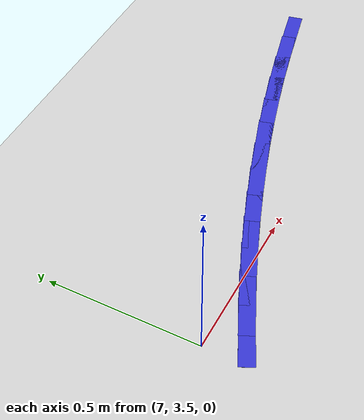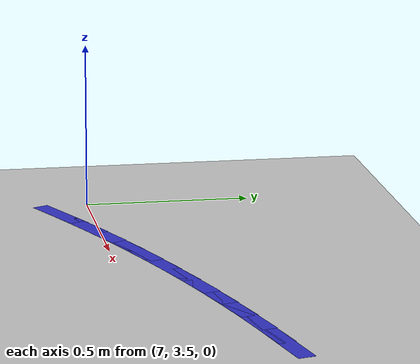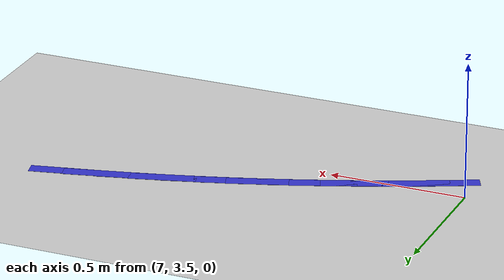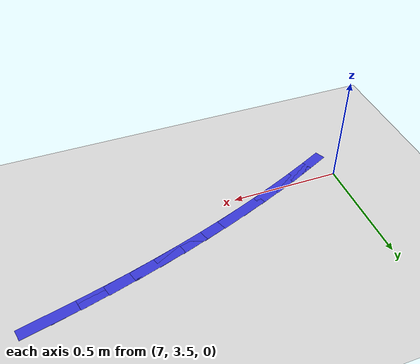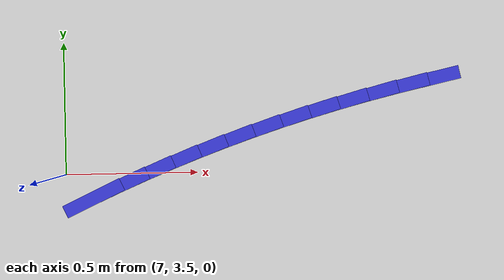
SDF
<sdf version="1.10">
 <world name="empty">
  <model name="ground_plane">
   <static>true</static>
   <link name="link">
    <collision name="collision">
     <geometry><plane><normal>0 0 1</normal><size>100 100</size></plane></geometry>
    </collision>
    <visual name="visual">
     <geometry><plane><normal>0 0 1</normal><size>100 100</size></plane></geometry>
     <material>
      <ambient>0.800000012 0.800000012 0.800000012 1</ambient>
      <diffuse>0.800000012 0.800000012 0.800000012 1</diffuse>
      <specular>0.800000012 0.800000012 0.800000012 1</specular>
     </material>
    </visual>
    <inertial>
     <mass>1</mass>
     <inertia><ixx>1</ixx><ixy>0</ixy><ixz>0</ixz><iyy>1</iyy><iyz>0</iyz><izz>1</izz></inertia>
    </inertial>
   </link>
  </model>
  <model name="unit_box_75">
   <link name="box_link">
    <collision name="box_collision">
     <geometry><box><size>0.000005 0.000005 0.000005</size></box></geometry>
    </collision>
    <visual name="box_visual">
     <geometry><box><size>0.24 0.05 0.0005</size></box></geometry>
     <material>
      <ambient>0.300000012 0.300000012 0.300000012 1</ambient>
      <diffuse>0.2 0.2 0.8 1</diffuse>
      <specular>1 1 1 1</specular>
     </material>
    </visual>
    <pose>7.102707515930657 3.408743078164566 0 0 0 0.44327587215471437</pose>
   </link>
   <static>false</static>
  </model>
  <model name="unit_box_76">
   <link name="box_link">
    <collision name="box_collision">
     <geometry><box><size>0.000005 0.000005 0.000005</size></box></geometry>
    </collision>
    <visual name="box_visual">
     <geometry><box><size>0.24 0.05 0.0005</size></box></geometry>
     <material>
      <ambient>0.300000012 0.300000012 0.300000012 1</ambient>
      <diffuse>0.2 0.2 0.8 1</diffuse>
      <specular>1 1 1 1</specular>
     </material>
    </visual>
    <pose>7.199368442098775 3.4526264584421913 0 0 0 0.4261695110121675</pose>
   </link>
   <static>false</static>
  </model>
  <model name="unit_box_77">
   <link name="box_link">
    <collision name="box_collision">
     <geometry><box><size>0.000005 0.000005 0.000005</size></box></geometry>
    </collision>
    <visual name="box_visual">
     <geometry><box><size>0.24 0.05 0.0005</size></box></geometry>
     <material>
      <ambient>0.300000012 0.300000012 0.300000012 1</ambient>
      <diffuse>0.2 0.2 0.8 1</diffuse>
      <specular>1 1 1 1</specular>
     </material>
    </visual>
    <pose>7.297668038408779 3.49519890260631 0 0 0 0.4087018499119111</pose>
   </link>
   <static>false</static>
  </model>
  <model name="unit_box_78">
   <link name="box_link">
    <collision name="box_collision">
     <geometry><box><size>0.000005 0.000005 0.000005</size></box></geometry>
    </collision>
    <visual name="box_visual">
     <geometry><box><size>0.24 0.05 0.0005</size></box></geometry>
     <material>
      <ambient>0.300000012 0.300000012 0.300000012 1</ambient>
      <diffuse>0.2 0.2 0.8 1</diffuse>
      <specular>1 1 1 1</specular>
     </material>
    </visual>
    <pose>7.397668141469794 3.5364109413696188 0 0 0 0.39091076095970295</pose>
   </link>
   <static>false</static>
  </model>
  <model name="unit_box_79">
   <link name="box_link">
    <collision name="box_collision">
     <geometry><box><size>0.000005 0.000005 0.000005</size></box></geometry>
    </collision>
    <visual name="box_visual">
     <geometry><box><size>0.24 0.05 0.0005</size></box></geometry>
     <material>
      <ambient>0.300000012 0.300000012 0.300000012 1</ambient>
      <diffuse>0.2 0.2 0.8 1</diffuse>
      <specular>1 1 1 1</specular>
     </material>
    </visual>
    <pose>7.4994305878909495 3.5762131054448165 0 0 0 0.37283496842157926</pose>
   </link>
   <static>false</static>
  </model>
  <model name="unit_box_80">
   <link name="box_link">
    <collision name="box_collision">
     <geometry><box><size>0.000005 0.000005 0.000005</size></box></geometry>
    </collision>
    <visual name="box_visual">
     <geometry><box><size>0.24 0.05 0.0005</size></box></geometry>
     <material>
      <ambient>0.300000012 0.300000012 0.300000012 1</ambient>
      <diffuse>0.2 0.2 0.8 1</diffuse>
      <specular>1 1 1 1</specular>
     </material>
    </visual>
    <pose>7.603017214281372 3.6145559255446003 0 0 0 0.3545138061122175</pose>
   </link>
   <static>false</static>
  </model>
  <model name="unit_box_81">
   <link name="box_link">
    <collision name="box_collision">
     <geometry><box><size>0.000005 0.000005 0.000005</size></box></geometry>
    </collision>
    <visual name="box_visual">
     <geometry><box><size>0.24 0.05 0.0005</size></box></geometry>
     <material>
      <ambient>0.300000012 0.300000012 0.300000012 1</ambient>
      <diffuse>0.2 0.2 0.8 1</diffuse>
      <specular>1 1 1 1</specular>
     </material>
    </visual>
    <pose>7.708489857250189 3.651389932381668 0 0 0 0.33598695978376386</pose>
   </link>
   <static>false</static>
  </model>
  <model name="unit_box_82">
   <link name="box_link">
    <collision name="box_collision">
     <geometry><box><size>0.000005 0.000005 0.000005</size></box></geometry>
    </collision>
    <visual name="box_visual">
     <geometry><box><size>0.24 0.05 0.0005</size></box></geometry>
     <material>
      <ambient>0.300000012 0.300000012 0.300000012 1</ambient>
      <diffuse>0.2 0.2 0.8 1</diffuse>
      <specular>1 1 1 1</specular>
     </material>
    </visual>
    <pose>7.815910353406527 3.6866656566687173 0 0 0 0.3172941993907637</pose>
   </link>
   <static>false</static>
  </model>
  <model name="unit_box_83">
   <link name="box_link">
    <collision name="box_collision">
     <geometry><box><size>0.000005 0.000005 0.000005</size></box></geometry>
    </collision>
    <visual name="box_visual">
     <geometry><box><size>0.24 0.05 0.0005</size></box></geometry>
     <material>
      <ambient>0.300000012 0.300000012 0.300000012 1</ambient>
      <diffuse>0.2 0.2 0.8 1</diffuse>
      <specular>1 1 1 1</specular>
     </material>
    </visual>
    <pose>7.925340539359516 3.7203336291184463 0 0 0 0.2984751064941239</pose>
   </link>
   <static>false</static>
  </model>
  <model name="unit_box_84">
   <link name="box_link">
    <collision name="box_collision">
     <geometry><box><size>0.000005 0.000005 0.000005</size></box></geometry>
    </collision>
    <visual name="box_visual">
     <geometry><box><size>0.24 0.05 0.0005</size></box></geometry>
     <material>
      <ambient>0.300000012 0.300000012 0.300000012 1</ambient>
      <diffuse>0.2 0.2 0.8 1</diffuse>
      <specular>1 1 1 1</specular>
     </material>
    </visual>
    <pose>8.036842251718285 3.7523443804435543 0 0 0 0.27956880226171016</pose>
   </link>
   <static>false</static>
  </model>
  <model name="unit_box_85">
   <link name="box_link">
    <collision name="box_collision">
     <geometry><box><size>0.000005 0.000005 0.000005</size></box></geometry>
    </collision>
    <visual name="box_visual">
     <geometry><box><size>0.24 0.05 0.0005</size></box></geometry>
     <material>
      <ambient>0.300000012 0.300000012 0.300000012 1</ambient>
      <diffuse>0.2 0.2 0.8 1</diffuse>
      <specular>1 1 1 1</specular>
     </material>
    </visual>
    <pose>8.15047732709196 3.782648441356736 0 0 0 0.2606136815127098</pose>
   </link>
   <static>false</static>
  </model>
  <model name="unit_box_86">
   <link name="box_link">
    <collision name="box_collision">
     <geometry><box><size>0.000005 0.000005 0.000005</size></box></geometry>
    </collision>
    <visual name="box_visual">
     <geometry><box><size>0.24 0.05 0.0005</size></box></geometry>
     <material>
      <ambient>0.300000012 0.300000012 0.300000012 1</ambient>
      <diffuse>0.2 0.2 0.8 1</diffuse>
      <specular>1 1 1 1</specular>
     </material>
    </visual>
    <pose>8.266307602089665 3.8111963425706925 0 0 0 0.24164715804041145</pose>
   </link>
   <static>false</static>
  </model>
  <model name="unit_box_87">
   <link name="box_link">
    <collision name="box_collision">
     <geometry><box><size>0.000005 0.000005 0.000005</size></box></geometry>
    </collision>
    <visual name="box_visual">
     <geometry><box><size>0.24 0.05 0.0005</size></box></geometry>
     <material>
      <ambient>0.300000012 0.300000012 0.300000012 1</ambient>
      <diffuse>0.2 0.2 0.8 1</diffuse>
      <specular>1 1 1 1</specular>
     </material>
    </visual>
    <pose>8.384394913320534 3.837938614798119 0 0 0 0.22270542604354973</pose>
   </link>
   <static>false</static>
  </model>
 </world>
</sdf>
